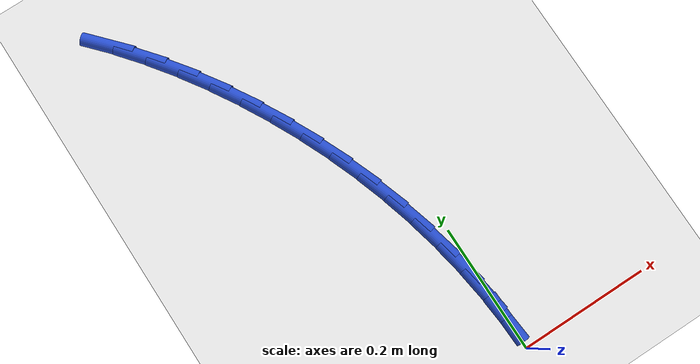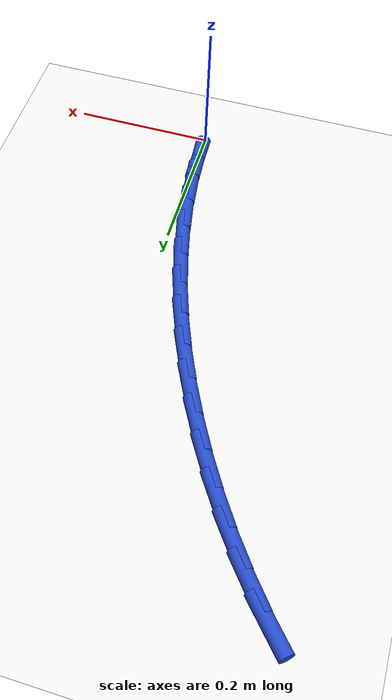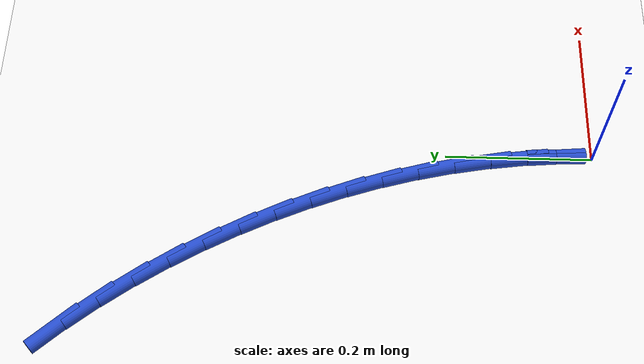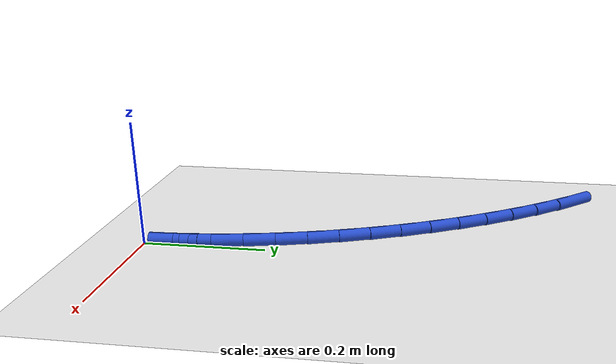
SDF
<sdf version="1.6">
 <world name="default">
  <model name="ground_plane">
   <static>1</static>
   <link name="link">
    <collision name="collision">
     <geometry><plane><normal>0 0 1</normal><size>100 100</size></plane></geometry>
     <surface><friction><ode><mu>100</mu><mu2>50</mu2></ode></friction></surface>
    </collision>
    <visual name="visual">
     <cast_shadows>0</cast_shadows>
     <geometry><plane><normal>0 0 1</normal><size>100 100</size></plane></geometry>
     <material>
      <script><uri>file://media/materials/scripts/gazebo.material</uri><name>Gazebo/WhiteGlow</name></script>
     </material>
    </visual>
   </link>
  </model>
  <model name="line">
   <link name="link_1">
    <pose>-0.0017261275478396257 0.050602021174256585 0.01 0 1.57 -1.4853345302717171</pose>
    <collision name="collision">
     <geometry><cylinder><radius>0.01</radius><length>0.08</length></cylinder></geometry>
    </collision>
    <visual name="visual">
     <material>
      <script><name>Gazebo/Blue</name><uri>file://media/materials/scripts/gazebo.material</uri></script>
     </material>
     <geometry><cylinder><radius>0.01</radius><length>0.08</length></cylinder></geometry>
    </visual>
   </link>
   <link name="link_2">
    <pose>-0.0060370900155371846 0.100922306686712 0.01 0 1.57 -1.4350232379265757</pose>
    <collision name="collision">
     <geometry><cylinder><radius>0.01</radius><length>0.08</length></cylinder></geometry>
    </collision>
    <visual name="visual">
     <material>
      <script><name>Gazebo/Blue</name><uri>file://media/materials/scripts/gazebo.material</uri></script>
     </material>
     <geometry><cylinder><radius>0.01</radius><length>0.08</length></cylinder></geometry>
    </visual>
   </link>
   <link name="link_3">
    <pose>-0.012865042923448693 0.15090235105286207 0.01 0 1.57 -1.3858262834850097</pose>
    <collision name="collision">
     <geometry><cylinder><radius>0.01</radius><length>0.08</length></cylinder></geometry>
    </collision>
    <visual name="visual">
     <material>
      <script><name>Gazebo/Blue</name><uri>file://media/materials/scripts/gazebo.material</uri></script>
     </material>
     <geometry><cylinder><radius>0.01</radius><length>0.08</length></cylinder></geometry>
    </visual>
   </link>
   <link name="link_4">
    <pose>-0.022142141791930192 0.2004836487882026 0.01 0 1.57 -1.337781490578296</pose>
    <collision name="collision">
     <geometry><cylinder><radius>0.01</radius><length>0.08</length></cylinder></geometry>
    </collision>
    <visual name="visual">
     <material>
      <script><name>Gazebo/Blue</name><uri>file://media/materials/scripts/gazebo.material</uri></script>
     </material>
     <geometry><cylinder><radius>0.01</radius><length>0.08</length></cylinder></geometry>
    </visual>
   </link>
   <link name="link_5">
    <pose>-0.033800542141337694 0.2496076944082293 0.01 0 1.57 -1.2909039948894605</pose>
    <collision name="collision">
     <geometry><cylinder><radius>0.01</radius><length>0.08</length></cylinder></geometry>
    </collision>
    <visual name="visual">
     <material>
      <script><name>Gazebo/Blue</name><uri>file://media/materials/scripts/gazebo.material</uri></script>
     </material>
     <geometry><cylinder><radius>0.01</radius><length>0.08</length></cylinder></geometry>
    </visual>
   </link>
   <link name="link_6">
    <pose>-0.04777239949202724 0.29821598242843783 0.01 0 1.57 -1.2451885906954065</pose>
    <collision name="collision">
     <geometry><cylinder><radius>0.01</radius><length>0.08</length></cylinder></geometry>
    </collision>
    <visual name="visual">
     <material>
      <script><name>Gazebo/Blue</name><uri>file://media/materials/scripts/gazebo.material</uri></script>
     </material>
     <geometry><cylinder><radius>0.01</radius><length>0.08</length></cylinder></geometry>
    </visual>
   </link>
   <link name="link_7">
    <pose>-0.06398986936435486 0.3462500073643241 0.01 0 1.57 -1.2006122880611994</pose>
    <collision name="collision">
     <geometry><cylinder><radius>0.01</radius><length>0.08</length></cylinder></geometry>
    </collision>
    <visual name="visual">
     <material>
      <script><name>Gazebo/Blue</name><uri>file://media/materials/scripts/gazebo.material</uri></script>
     </material>
     <geometry><cylinder><radius>0.01</radius><length>0.08</length></cylinder></geometry>
    </visual>
   </link>
   <link name="link_8">
    <pose>-0.08238510727867658 0.3936512637313838 0.01 0 1.57 -1.1571369099605433</pose>
    <collision name="collision">
     <geometry><cylinder><radius>0.01</radius><length>0.08</length></cylinder></geometry>
    </collision>
    <visual name="visual">
     <material>
      <script><name>Gazebo/Blue</name><uri>file://media/materials/scripts/gazebo.material</uri></script>
     </material>
     <geometry><cylinder><radius>0.01</radius><length>0.08</length></cylinder></geometry>
    </visual>
   </link>
   <link name="link_9">
    <pose>-0.10289026875534844 0.44036124604511245 0.01 0 1.57 -1.1146822753599783</pose>
    <collision name="collision">
     <geometry><cylinder><radius>0.01</radius><length>0.08</length></cylinder></geometry>
    </collision>
    <visual name="visual">
     <material>
      <script><name>Gazebo/Blue</name><uri>file://media/materials/scripts/gazebo.material</uri></script>
     </material>
     <geometry><cylinder><radius>0.01</radius><length>0.08</length></cylinder></geometry>
    </visual>
   </link>
   <link name="link_10">
    <pose>-0.1254380991202371 0.4863192428965938 0.01 0 1.57 -1.0723776037099162</pose>
    <collision name="collision">
     <geometry><cylinder><radius>0.01</radius><length>0.08</length></cylinder></geometry>
    </collision>
    <visual name="visual">
     <material>
      <script><name>Gazebo/Blue</name><uri>file://media/materials/scripts/gazebo.material</uri></script>
     </material>
     <geometry><cylinder><radius>0.01</radius><length>0.08</length></cylinder></geometry>
    </visual>
   </link>
   <link name="link_11">
    <pose>-0.1499768706059134 0.5314064708821105 0.01 0 1.57 -1.0291494275658961</pose>
    <collision name="collision">
     <geometry><cylinder><radius>0.01</radius><length>0.08</length></cylinder></geometry>
    </collision>
    <visual name="visual">
     <material>
      <script><name>Gazebo/Blue</name><uri>file://media/materials/scripts/gazebo.material</uri></script>
     </material>
     <geometry><cylinder><radius>0.01</radius><length>0.08</length></cylinder></geometry>
    </visual>
   </link>
   <link name="link_12">
    <pose>-0.17647155712450766 0.5754416808494853 0.01 0 1.57 -0.9846752340049181</pose>
    <collision name="collision">
     <geometry><cylinder><radius>0.01</radius><length>0.08</length></cylinder></geometry>
    </collision>
    <visual name="visual">
     <material>
      <script><name>Gazebo/Blue</name><uri>file://media/materials/scripts/gazebo.material</uri></script>
     </material>
     <geometry><cylinder><radius>0.01</radius><length>0.08</length></cylinder></geometry>
    </visual>
   </link>
   <link name="link_13">
    <pose>-0.20488795774010174 0.6182405375057702 0.01 0 1.57 -0.9386776092273326</pose>
    <collision name="collision">
     <geometry><cylinder><radius>0.01</radius><length>0.08</length></cylinder></geometry>
    </collision>
    <visual name="visual">
     <material>
      <script><name>Gazebo/Blue</name><uri>file://media/materials/scripts/gazebo.material</uri></script>
     </material>
     <geometry><cylinder><radius>0.01</radius><length>0.08</length></cylinder></geometry>
    </visual>
   </link>
   <link name="link_14">
    <pose>-0.23519187151677717 0.6596187055580169 0.01 0 1.57 -0.8908841904079866</pose>
    <collision name="collision">
     <geometry><cylinder><radius>0.01</radius><length>0.08</length></cylinder></geometry>
    </collision>
    <visual name="visual">
     <material>
      <script><name>Gazebo/Blue</name><uri>file://media/materials/scripts/gazebo.material</uri></script>
     </material>
     <geometry><cylinder><radius>0.01</radius><length>0.08</length></cylinder></geometry>
    </visual>
   </link>
   <link name="link_15">
    <pose>-0.2673490975186159 0.6993918497132778 0.01 0 1.57 -0.8410305386229276</pose>
    <collision name="collision">
     <geometry><cylinder><radius>0.01</radius><length>0.08</length></cylinder></geometry>
    </collision>
    <visual name="visual">
     <material>
      <script><name>Gazebo/Blue</name><uri>file://media/materials/scripts/gazebo.material</uri></script>
     </material>
     <geometry><cylinder><radius>0.01</radius><length>0.08</length></cylinder></geometry>
    </visual>
   </link>
   <link name="link_131">
    <pose>-0.0017396856043526282 0.05057859219643668 0.01 0 1.57 -1.5364141907458753</pose>
    <collision name="collision">
     <geometry><cylinder><radius>0.01</radius><length>0.08</length></cylinder></geometry>
    </collision>
    <visual name="visual">
     <material>
      <script><name>Gazebo/Blue</name><uri>file://media/materials/scripts/gazebo.material</uri></script>
     </material>
     <geometry><cylinder><radius>0.01</radius><length>0.08</length></cylinder></geometry>
    </visual>
   </link>
  </model>
 </world>
</sdf>
